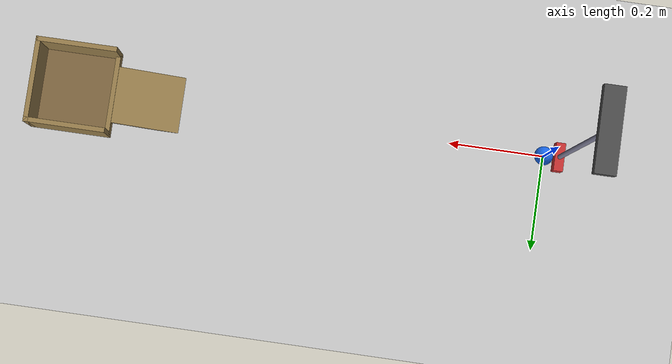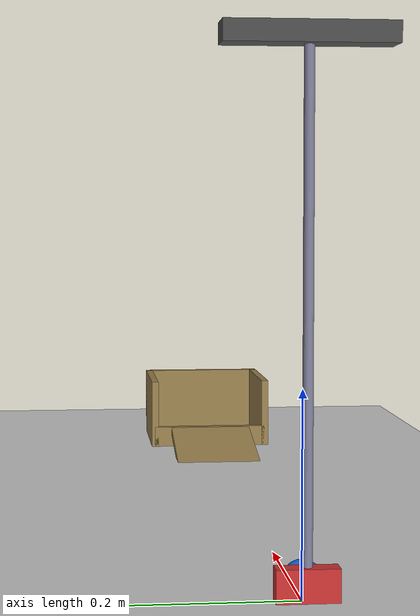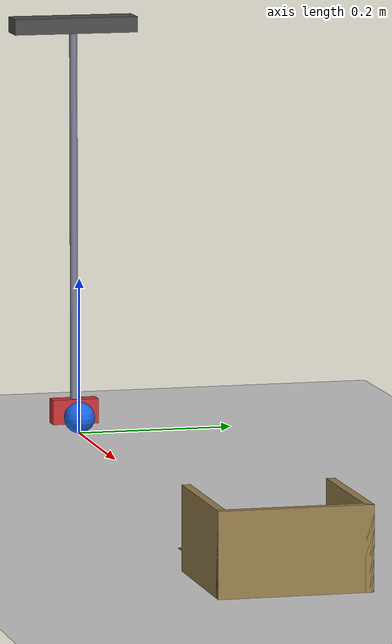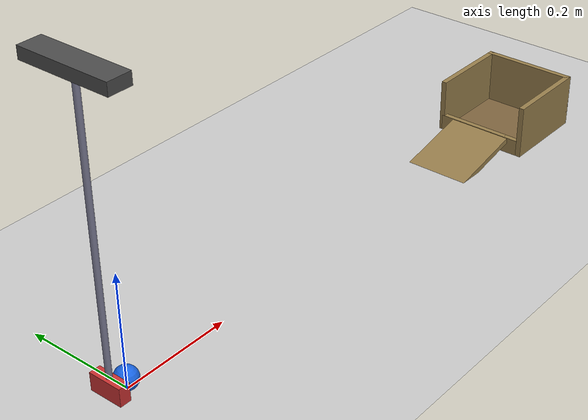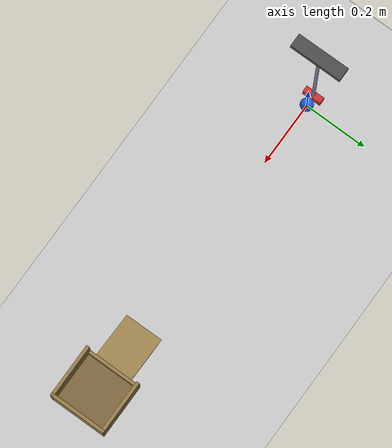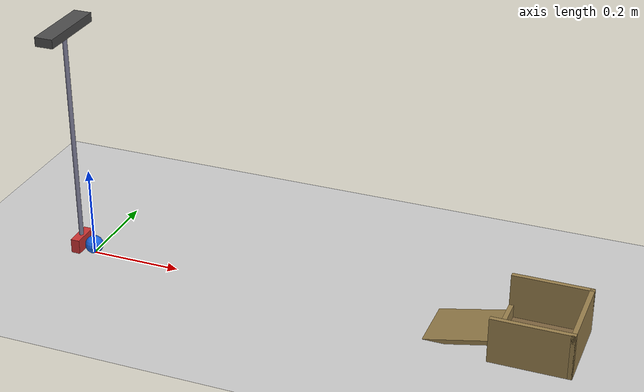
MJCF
<mujoco model="pendulum_ball_cup">
  <option timestep="0.002" gravity="0 0 -9.81"/>

  <worldbody>
    <light name="sun" pos="0.5 0 3" dir="0 0 -1" diffuse="0.8 0.8 0.8"/>
    <geom name="floor" type="plane" size="3 3 0.1" rgba="0.8 0.8 0.8 1"/>

    <!-- visual support beam at the pivot (no collisions) -->
    <geom name="support_beam" type="box" pos="-0.0305 0 0.524" size="0.02 0.08 0.01" contype="0" conaffinity="0" rgba="0.3 0.3 0.3 1"/>

    <!-- pendulum: flat paddle whose front face spans the ball's centre height at the bottom of the swing -->
    <body name="pendulum" pos="-0.0305 0 0.524">
      <joint name="pendulum_hinge" type="hinge" axis="0 1 0" pos="0 0 0"/>
      <geom name="pendulum_rod" type="capsule" fromto="0 0 0 0 0 -0.484" size="0.005" mass="0.02" rgba="0.5 0.5 0.6 1"/>
      <geom name="pendulum_paddle" type="box" pos="0 0 -0.5" size="0.01 0.03 0.016" mass="0.3" rgba="0.8 0.2 0.2 1"/>
    </body>

    <!-- ball resting on the floor at the origin -->
    <body name="ball" pos="0 0 0.02">
      <freejoint name="ball_free"/>
      <geom name="ball" type="sphere" size="0.02" mass="0.03" friction="1 0.005 0.0001" rgba="0.1 0.4 0.9 1"/>
    </body>

    <!-- cup centred 1 m from the ball's start, with an entry ramp up to its 3 cm front lip -->
    <body name="cup" pos="1 0 0">
      <geom name="cup_ramp" type="box" pos="-0.158952 0 0.007968" euler="0 -12.095 0" size="0.081816 0.06 0.005" rgba="0.6 0.5 0.3 1"/>
      <geom name="cup_front_wall" type="box" pos="-0.08 0 0.015" size="0.005 0.085 0.015" rgba="0.6 0.5 0.3 1"/>
      <geom name="cup_back_wall" type="box" pos="0.08 0 0.05" size="0.005 0.09 0.05" rgba="0.6 0.5 0.3 1"/>
      <geom name="cup_side_left" type="box" pos="0 0.085 0.05" size="0.085 0.005 0.05" rgba="0.6 0.5 0.3 1"/>
      <geom name="cup_side_right" type="box" pos="0 -0.085 0.05" size="0.085 0.005 0.05" rgba="0.6 0.5 0.3 1"/>
      <geom name="cup_base" type="box" pos="0 0 0.001" size="0.075 0.08 0.001" condim="6" friction="1 0.02 0.02" rgba="0.5 0.4 0.25 1"/>
    </body>
  </worldbody>

  <keyframe>
    <key name="start" qpos="0.7854 0 0 0.02 1 0 0 0" qvel="0 0 0 0 0 0 0"/>
  </keyframe>
</mujoco>
